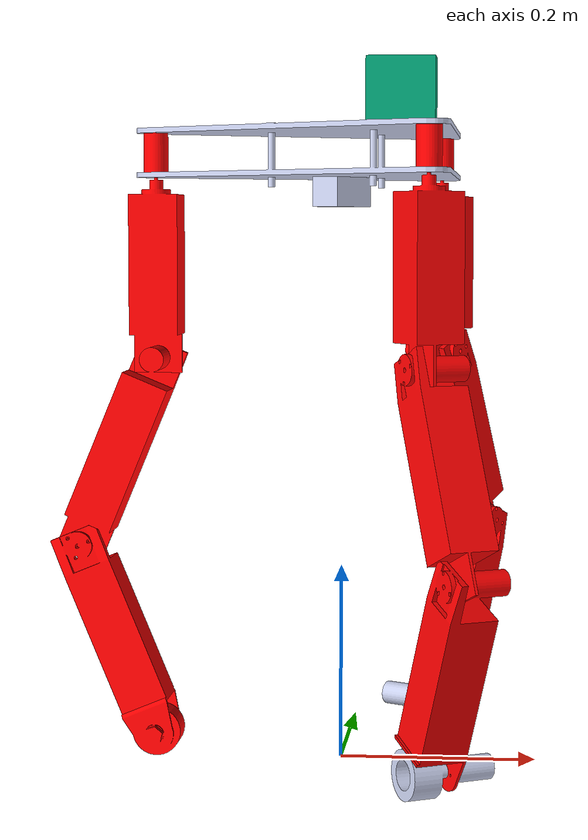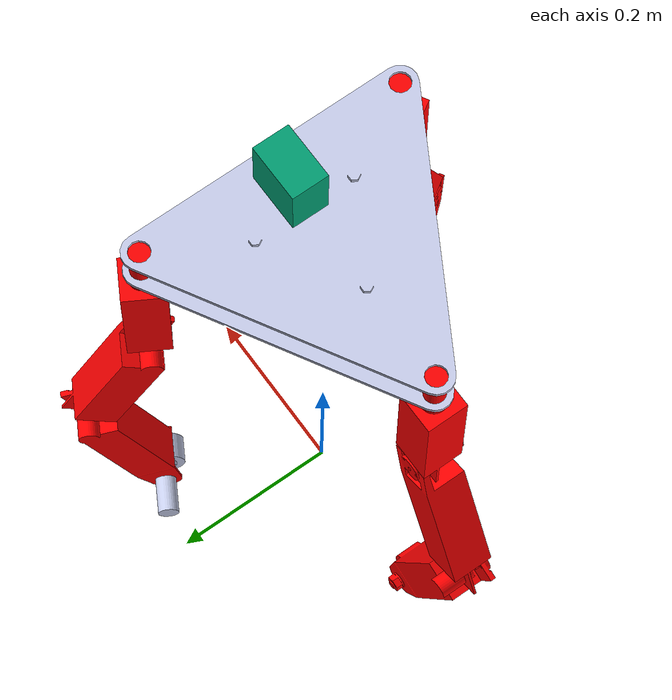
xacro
<?xml version="1.0" encoding="utf-8"?>
<robot xmlns:xacro="http://wiki.ros.org/xacro"
  name="three_legged_robot">

    <xacro:macro name="default_transmission" params="joint_name">
        <transmission name="transmission_${joint_name}">
            <plugin>transmission_interface/SimpleTransmission</plugin>
            <actuator name="actuator_${joint_name}" role="actuator_${joint_name}"/>
            <joint name="${joint_name}" role="${joint_name}">
                <mechanical_reduction>1.0</mechanical_reduction>
            </joint>
        </transmission>
    </xacro:macro>
  <link
    name="map">
    <inertial>
      <origin
        xyz="4.5102810375397E-17 0 -0.000499999999999945"
        rpy="0 0 0" />
      <mass
        value="6.1261056745001E-06" />
      <inertia
        ixx="8.93390410864599E-13"
        ixy="-1.66202821367583E-58"
        ixz="2.95962595510492E-45"
        iyy="8.93390410864599E-13"
        iyz="4.70349326783696E-42"
        izz="7.65763209312513E-13" />
    </inertial>
    <visual>
      <origin
        xyz="0 0 0"
        rpy="0 0 0" />
      <geometry>
        <mesh
          filename="/home/semakiller/diplom/three_legged_robot_ws/src/three_legged_robot/meshes/world.STL" />
      </geometry>
      <material
        name="">
        <color
          rgba="0.792156862745098 0.819607843137255 0.933333333333333 1" />
      </material>
    </visual>
    <collision>
      <origin
        xyz="0 0 0"
        rpy="0 0 0" />
      <geometry>
        <mesh
          filename="/home/semakiller/diplom/three_legged_robot_ws/src/three_legged_robot/meshes/world.STL" />
      </geometry>
    </collision>
  </link>

    <link name="x_link">
      <inertial>
        <origin xyz="0 0 0" rpy="0 0 0"/>
        <mass value="1E-8" />
                <inertia         ixx="8.93390410864599E-13"
        ixy="-1.66202821367583E-58"
        ixz="2.95962595510492E-45"
        iyy="8.93390410864599E-13"
        iyz="4.70349326783696E-42"
        izz="7.65763209312513E-13" />
      </inertial>
      <collision>
      <origin
        xyz="0 0 0"
        rpy="0 0 0" />
      <geometry>
        <mesh
          filename="/home/semakiller/diplom/three_legged_robot_ws/src/three_legged_robot/meshes/world.STL" />
      </geometry>
    </collision>
    </link>

        <link name="y_link">
      <inertial>
        <origin xyz="0 0 0" rpy="0 0 0"/>
        <mass value="1E-8" />
                <inertia         ixx="8.93390410864599E-13"
        ixy="-1.66202821367583E-58"
        ixz="2.95962595510492E-45"
        iyy="8.93390410864599E-13"
        iyz="4.70349326783696E-42"
        izz="7.65763209312513E-13" />
      </inertial>
      <collision>
      <origin
        xyz="0 0 0"
        rpy="0 0 0" />
      <geometry>
        <mesh
          filename="/home/semakiller/diplom/three_legged_robot_ws/src/three_legged_robot/meshes/world.STL" />
      </geometry>
    </collision>
    </link>

    <link name="z_link">
      <inertial>
        <origin xyz="0 0 0" rpy="0 0 0"/>
        <mass value="1E-8" />
                <inertia
                ixx="8.93390410864599E-13"
        ixy="-1.66202821367583E-58"
        ixz="2.95962595510492E-45"
        iyy="8.93390410864599E-13"
        iyz="4.70349326783696E-42"
        izz="7.65763209312513E-13" />
      </inertial>
      <collision>
      <origin
        xyz="0 0 0"
        rpy="0 0 0" />
      <geometry>
        <mesh
          filename="/home/semakiller/diplom/three_legged_robot_ws/src/three_legged_robot/meshes/world.STL" />
      </geometry>
    </collision>
    </link>

    <link name="yaw_link">
      <inertial>
        <origin xyz="0 0 0" rpy="0 0 0"/>
        <mass value="1E-8" />
                <inertia         ixx="8.93390410864599E-13"
        ixy="-1.66202821367583E-58"
        ixz="2.95962595510492E-45"
        iyy="8.93390410864599E-13"
        iyz="4.70349326783696E-42"
        izz="7.65763209312513E-13"  />
      </inertial>
          <collision>
      <origin
        xyz="0 0 0"
        rpy="0 0 0" />
      <geometry>
        <mesh
          filename="/home/semakiller/diplom/three_legged_robot_ws/src/three_legged_robot/meshes/world.STL" />
      </geometry>
    </collision>
    </link>

    <link name="pitch_link">
      <inertial>
        <origin xyz="0 0 0" rpy="0 0 0"/>
        <mass value="1E-8" />
                <inertia         ixx="8.93390410864599E-13"
        ixy="-1.66202821367583E-58"
        ixz="2.95962595510492E-45"
        iyy="8.93390410864599E-13"
        iyz="4.70349326783696E-42"
        izz="7.65763209312513E-13"  />
      </inertial>
      <collision>
      <origin
        xyz="0 0 0"
        rpy="0 0 0" />
      <geometry>
        <mesh
          filename="/home/semakiller/diplom/three_legged_robot_ws/src/three_legged_robot/meshes/world.STL" />
      </geometry>
    </collision>
    </link>

  <link
    name="base">
    <inertial>
      <origin
        xyz="0 0 0"
        rpy="0 0 0" />
      <mass
        value="2.54" />
      <inertia
        ixx="0.01"
        ixy="0"
        ixz="0"
        iyy="0.01"
        iyz="0"
        izz="0.02" />
    </inertial>
    <visual>
      <origin
        xyz="0 0 0"
        rpy="0 0 1.0472" />
      <geometry>
        <mesh
          filename="/home/semakiller/diplom/three_legged_robot_ws/src/three_legged_robot/meshes/base.STL" />
      </geometry>
      <material
        name="">
        <color
          rgba="0.79216 0.81961 0.93333 1" />
      </material>
    </visual>
    <collision>
      <origin
        xyz="0 0 0"
        rpy="0 0 0" />
      <geometry>
        <mesh
          filename="/home/semakiller/diplom/three_legged_robot_ws/src/three_legged_robot/meshes/base.STL" />
      </geometry>
    </collision>
  </link>

    <joint name="x" type="prismatic">
      <origin xyz="0 0 0" rpy="0 0 0"/>
      <axis xyz="1 0 0"/>
      <limit lower="-1000" upper="1000" effort="1000" velocity="1000" />
      <parent link="map" />
      <child link="x_link" />
    </joint>
    <joint name="y" type="prismatic">
      <origin xyz="0 0 0" rpy="0 0 0"/>
      <axis xyz="0 1 0"/>
      <limit lower="-1000" upper="1000" effort="1000" velocity="1000" />
      <parent link="x_link" />
      <child link="y_link" />
    </joint>
    <joint name="z" type="prismatic">
      <origin xyz="0 0 0" rpy="0 0 0"/>
      <axis xyz="0 0 1"/>
      <limit lower="-1000" upper="1000" effort="1000" velocity="1000" />
      <parent link="y_link" />
      <child link="z_link" />
    </joint>
    <joint name="yaw" type="continuous">
      <origin xyz="0 0 0" rpy="0 0 0"/>
      <axis xyz="0 0 1"/>
      <parent link="z_link" />
      <child link="yaw_link" />
    </joint>
    <joint name="pitch" type="continuous">
      <origin xyz="0 0 0" rpy="0 0 0"/>
      <axis xyz="0 1 0"/>
      <parent link="yaw_link" />
      <child link="pitch_link" />
    </joint>
    <joint name="roll" type="continuous">
      <origin xyz="0 0 0.62353" rpy="0 0 0"/>
      <axis xyz="1 0 0"/>
      <parent link="pitch_link" />
      <child link="base" />
    </joint>

  <link
    name="leg1_upper_link">
    <inertial>
      <origin
        xyz="0 0 -0.105"
        rpy="0 0 0" />
      <mass
        value="0.63" />
      <inertia
        ixx="0.0011498"
        ixy="0"
        ixz="0"
        iyy="0.0011498"
        iyz="0"
        izz="0.00023794" />
    </inertial>
    <visual>
      <origin
        xyz="0 0 0"
        rpy="0 0 0" />
      <geometry>
        <mesh
          filename="/home/semakiller/diplom/three_legged_robot_ws/src/three_legged_robot/meshes/leg1_upper_link.STL" />
      </geometry>
      <material
        name="">
        <color
          rgba="1 0 0 1" />
      </material>
    </visual>
    <collision>
      <origin
        xyz="0 0 0"
        rpy="0 0 0" />
      <geometry>
        <mesh
          filename="/home/semakiller/diplom/three_legged_robot_ws/src/three_legged_robot/meshes/leg1_upper_link.STL" />
      </geometry>
    </collision>
  </link>

   <joint
    name="q1"
    type="continuous">
    <origin
      xyz="0.09547 0.16536 0"
      rpy="0 0 1.0472" />
    <parent
      link="base" />
    <child
      link="leg1_upper_link" />
    <axis
      xyz="0 0 1" />
  </joint>

  <link
    name="leg2_upper_link">
    <inertial>
      <origin
        xyz="0 0 -0.105"
        rpy="0 0 0" />
      <mass
        value="0.63" />
      <inertia
        ixx="0.0011498"
        ixy="0"
        ixz="0"
        iyy="0.0011498"
        iyz="0"
        izz="0.00023794" />
    </inertial>
    <visual>
      <origin
        xyz="0 0 0"
        rpy="0 0 0" />
      <geometry>
        <mesh
          filename="/home/semakiller/diplom/three_legged_robot_ws/src/three_legged_robot/meshes/leg1_upper_link.STL" />
      </geometry>
      <material
        name="">
        <color
          rgba="1 0 0 1" />
      </material>
    </visual>
    <collision>
      <origin
        xyz="0 0 0"
        rpy="0 0 0" />
      <geometry>
        <mesh
          filename="/home/semakiller/diplom/three_legged_robot_ws/src/three_legged_robot/meshes/leg1_upper_link.STL" />
      </geometry>
    </collision>
  </link>

  <joint
    name="q2"
    type="continuous">
    <origin
      xyz="-0.19094 0 0"
      rpy="0 0 3.1415" />
    <parent
      link="base" />
    <child
      link="leg2_upper_link" />
    <axis
      xyz="0 0 1" />
  </joint>

    <link
    name="leg3_upper_link">
    <inertial>
      <origin
        xyz="0 0 -0.105"
        rpy="0 0 0" />
      <mass
        value="0.63" />
      <inertia
        ixx="0.0011498"
        ixy="0"
        ixz="0"
        iyy="0.0011498"
        iyz="0"
        izz="0.00023794" />
    </inertial>
    <visual>
      <origin
        xyz="0 0 0"
        rpy="0 0 0" />
      <geometry>
        <mesh
          filename="/home/semakiller/diplom/three_legged_robot_ws/src/three_legged_robot/meshes/leg1_upper_link.STL" />
      </geometry>
      <material
        name="">
        <color
          rgba="1 0 0 1" />
      </material>
    </visual>
    <collision>
      <origin
        xyz="0 0 0"
        rpy="0 0 0" />
      <geometry>
        <mesh
          filename="/home/semakiller/diplom/three_legged_robot_ws/src/three_legged_robot/meshes/leg1_upper_link.STL" />
      </geometry>
    </collision>
  </link>
  <joint
    name="q3"
    type="continuous">
    <origin
      xyz="0.09547 -0.16536 0"
      rpy="0 0 -1.0472" />
    <parent
      link="base" />
    <child
      link="leg3_upper_link" />
    <axis
      xyz="0 0 1" />
  </joint>

  <link
    name="leg1_medium_link">
    <inertial>
      <origin
        xyz="0.037361 -0.090306 0"
        rpy="0 0 0" />
      <mass
        value="0.71" />
      <inertia
        ixx="0.04"
        ixy="0"
        ixz="0"
        iyy="0.04"
        iyz="0"
        izz="0.00435" />
    </inertial>
    <visual>
      <origin
        xyz="0 0 0"
        rpy="0 0 0" />
      <geometry>
        <mesh
          filename="/home/semakiller/diplom/three_legged_robot_ws/src/three_legged_robot/meshes/leg1_medium_link.STL" />
      </geometry>
      <material
        name="">
        <color
          rgba="1 0 0 1" />
      </material>
    </visual>
    <collision>
      <origin
        xyz="0 0 0"
        rpy="0 0 0" />
      <geometry>
        <mesh
          filename="/home/semakiller/diplom/three_legged_robot_ws/src/three_legged_robot/meshes/leg1_medium_link.STL" />
      </geometry>
    </collision>
  </link>
  <joint
    name="q4"
    type="continuous">
    <origin
      xyz="0 0 -0.21"
      rpy="1.5708 0 0" />
    <parent
      link="leg1_upper_link" />
    <child
      link="leg1_medium_link" />
    <axis
      xyz="0 0 1" />
  </joint>

    <link
    name="leg2_medium_link">
    <inertial>
      <origin
        xyz="0.037361 -0.090306 0"
        rpy="0 0 0" />
      <mass
        value="0.71" />
      <inertia
        ixx="0.04"
        ixy="0"
        ixz="0"
        iyy="0.04"
        iyz="0"
        izz="0.00435" />
    </inertial>
    <visual>
      <origin
        xyz="0 0 0"
        rpy="0 0 0" />
      <geometry>
        <mesh
          filename="/home/semakiller/diplom/three_legged_robot_ws/src/three_legged_robot/meshes/leg1_medium_link.STL" />
      </geometry>
      <material
        name="">
        <color
          rgba="1 0 0 1" />
      </material>
    </visual>
    <collision>
      <origin
        xyz="0 0 0"
        rpy="0 0 0" />
      <geometry>
        <mesh
          filename="/home/semakiller/diplom/three_legged_robot_ws/src/three_legged_robot/meshes/leg1_medium_link.STL" />
      </geometry>
    </collision>
  </link>
  <joint
    name="q5"
    type="continuous">
    <origin
      xyz="0 0 -0.21"
      rpy="1.5708 0 0" />
    <parent
      link="leg2_upper_link" />
    <child
      link="leg2_medium_link" />
    <axis
      xyz="0 0 -1" />
  </joint>

    <link
    name="leg3_medium_link">
    <inertial>
      <origin
        xyz="0.037361 -0.090306 0"
        rpy="0 0 0" />
      <mass
        value="0.71" />
      <inertia
        ixx="0.04"
        ixy="0"
        ixz="0"
        iyy="0.04"
        iyz="0"
        izz="0.00435" />
    </inertial>
    <visual>
      <origin
        xyz="0 0 0"
        rpy="0 0 0" />
      <geometry>
        <mesh
          filename="/home/semakiller/diplom/three_legged_robot_ws/src/three_legged_robot/meshes/leg1_medium_link.STL" />
      </geometry>
      <material
        name="">
        <color
          rgba="1 0 0 1" />
      </material>
    </visual>
    <collision>
      <origin
        xyz="0 0 0"
        rpy="0 0 0" />
      <geometry>
        <mesh
          filename="/home/semakiller/diplom/three_legged_robot_ws/src/three_legged_robot/meshes/leg1_medium_link.STL" />
      </geometry>
    </collision>
  </link>
  <joint
    name="q6"
    type="continuous">
    <origin
      xyz="0 0 -0.21"
      rpy="1.5708 0 0" />
    <parent
      link="leg3_upper_link" />
    <child
      link="leg3_medium_link" />
    <axis
      xyz="0 0 1" />
  </joint>

    <link
    name="leg1_bottom_link">
    <inertial>
      <origin
        xyz="0.068158 -0.068158 0"
        rpy="0 0 0" />
      <mass
        value="0.72" />
      <inertia
        ixx="0.0008995"
        ixy="0"
        ixz="0"
        iyy="0.0008995"
        iyz="0"
        izz="0.000151" />
    </inertial>
    <visual>
      <origin
        xyz="0 0 0"
        rpy="0 0 0" />
      <geometry>
        <mesh
          filename="/home/semakiller/diplom/three_legged_robot_ws/src/three_legged_robot/meshes/leg1_bottom_link.STL" />
      </geometry>
      <material
        name="">
        <color
          rgba="1 0 0 1" />
      </material>
    </visual>
    <collision>
      <origin
        xyz="0 0 0"
        rpy="0 0 0" />
      <geometry>
        <mesh
          filename="/home/semakiller/diplom/three_legged_robot_ws/src/three_legged_robot/meshes/leg1_bottom_link.STL" />
      </geometry>
    </collision>
  </link>
  <joint
    name="q7"
    type="continuous">
    <origin
      xyz="0.08052 -0.19409 0"
      rpy="0 0 -1.178" />
    <parent
      link="leg1_medium_link" />
    <child
      link="leg1_bottom_link" />
    <axis
      xyz="0 0 1" />
  </joint>

  <link
    name="leg2_bottom_link">
    <inertial>
      <origin
        xyz="0.078824 -0.078487 -0.00028114"
        rpy="0 0 0" />
      <mass
        value="0.9" />
      <inertia
        ixx="0.0046814"
        ixy="0"
        ixz="0"
        iyy="0.0046814"
        iyz="0"
        izz="0.0077262" />
    </inertial>
    <visual>
      <origin
        xyz="0 0 0"
        rpy="0 0 0" />
      <geometry>
        <mesh
          filename="/home/semakiller/diplom/three_legged_robot_ws/src/three_legged_robot/meshes/leg2_bottom_link.STL" />
      </geometry>
      <material
        name="">
        <color
          rgba="1 0 0 1" />
      </material>
    </visual>
    <collision>
      <origin
        xyz="0 0 0"
        rpy="0 0 0" />
      <geometry>
        <mesh
          filename="/home/semakiller/diplom/three_legged_robot_ws/src/three_legged_robot/meshes/leg2_bottom_link.STL" />
      </geometry>
    </collision>
  </link>
  <joint
    name="q8"
    type="continuous">
    <origin
      xyz="0.08052 -0.19409 0"
      rpy="0 0 -1.178" />
    <parent
      link="leg2_medium_link" />
    <child
      link="leg2_bottom_link" />
    <axis
      xyz="0 0 -1" />
  </joint>

  <link
    name="leg3_bottom_link">
    <inertial>
      <origin
        xyz="0.068158 -0.068158 0"
        rpy="0 0 0" />
      <mass
        value="0.72" />
      <inertia
        ixx="0.0008995"
        ixy="0"
        ixz="0"
        iyy="0.0008995"
        iyz="0"
        izz="0.000151" />
    </inertial>
    <visual>
      <origin
        xyz="0 0 0"
        rpy="0 0 0" />
      <geometry>
        <mesh
          filename="/home/semakiller/diplom/three_legged_robot_ws/src/three_legged_robot/meshes/leg1_bottom_link.STL" />
      </geometry>
      <material
        name="">
        <color
          rgba="1 0 0 1" />
      </material>
    </visual>
    <collision>
      <origin
        xyz="0 0 0"
        rpy="0 0 0" />
      <geometry>
        <mesh
          filename="/home/semakiller/diplom/three_legged_robot_ws/src/three_legged_robot/meshes/leg1_bottom_link.STL" />
      </geometry>
    </collision>
  </link>
  <joint
    name="q9"
    type="continuous">
    <origin
      xyz="0.08052 -0.19409 0"
      rpy="0 0 -1.178" />
    <parent
      link="leg3_medium_link" />
    <child
      link="leg3_bottom_link" />
    <axis
      xyz="0 0 1" />
  </joint>

  <link
    name="leg1_wheel_link">
    <inertial>
      <origin
        xyz="0 0 -0.0098602"
        rpy="0 0 0" />
      <mass
        value="0.25" />
      <inertia
        ixx="6E-05"
        ixy="0"
        ixz="0"
        iyy="6E-05"
        iyz="0"
        izz="7E-05" />
    </inertial>
    <visual>
      <origin
        xyz="0 0 0"
        rpy="0 0 0" />
      <geometry>
        <mesh
          filename="/home/semakiller/diplom/three_legged_robot_ws/src/three_legged_robot/meshes/wheel.STL" />
      </geometry>
      <material
        name="">
        <color
          rgba="0.79216 0.81961 0.93333 1" />
      </material>
    </visual>
    <collision>
      <origin
        xyz="0 0 0"
        rpy="0 0 0" />
      <geometry>
        <mesh
          filename="/home/semakiller/diplom/three_legged_robot_ws/src/three_legged_robot/meshes/wheel.STL" />
      </geometry>
    </collision>
  </link>
  <joint
    name="q10"
    type="fixed">
    <origin
      xyz="0.14849 -0.14849 0"
      rpy="0 0 -0.78545" />
    <parent
      link="leg1_bottom_link" />
    <child
      link="leg1_wheel_link" />
    <axis
      xyz="0 0 -1" />
  </joint>

  <link
    name="wheel">
    <inertial>
      <origin
        xyz="0 0 -0.0098602"
        rpy="0 0 0" />
      <mass
        value="0.25" />
      <inertia
        ixx="6E-05"
        ixy="0"
        ixz="0"
        iyy="6E-05"
        iyz="0"
        izz="7E-05" />
    </inertial>
    <visual>
      <origin
        xyz="0 0 0"
        rpy="0 0 0" />
      <geometry>
        <mesh
          filename="/home/semakiller/diplom/three_legged_robot_ws/src/three_legged_robot/meshes/wheel.STL" />
      </geometry>
      <material
        name="">
        <color
          rgba="0.79216 0.81961 0.93333 1" />
      </material>
    </visual>
    <collision>
      <origin
        xyz="0 0 0"
        rpy="0 0 0" />
      <geometry>
        <mesh
          filename="/home/semakiller/diplom/three_legged_robot_ws/src/three_legged_robot/meshes/wheel.STL" />
      </geometry>
    </collision>
  </link>
  <joint
    name="q11"
    type="fixed">
    <!-- we don't need to move a wheels in legged movement(tested it - just singular configurations) -->
    <origin
      xyz="0.14849 -0.14849 0"
      rpy="0 0 -0.78545" />
    <parent
      link="leg3_bottom_link" />
    <child
      link="wheel" />
    <axis
      xyz="0 0 1" />
  </joint>

  <joint name="laser_joint" type="fixed">
    <parent link = "base"/>
    <child link = "laser"/>
    <origin xyz = "0.06047 0 0.06"/>
  </joint>

  <link name="laser">
    <visual>
      <geometry>
        <box size="0.07 0.045 0.072">
        </box>
      </geometry>
      <collision>
        <geometry>
          <box size="0.07 0.045 0.072">
          </box>
        </geometry>
      </collision>
      <inertial>
        <origin
          xyz="0 0 -0.0098602"
          rpy="0 0 0" />
        <mass
          value="0.01" />
        <inertia
          ixx="6E-13"
          ixy="0"
          ixz="0"
          iyy="6E-13"
          iyz="0"
          izz="7E-13" />
      </inertial>
    </visual>
  </link>
  <xacro:default_transmission joint_name="q1"/>
  <xacro:default_transmission joint_name="q2"/>
  <xacro:default_transmission joint_name="q3"/>
  <xacro:default_transmission joint_name="q4"/>
  <xacro:default_transmission joint_name="q5"/>
  <xacro:default_transmission joint_name="q6"/>
  <xacro:default_transmission joint_name="q7"/>
  <xacro:default_transmission joint_name="q8"/>
  <xacro:default_transmission joint_name="q9"/>
  <xacro:default_transmission joint_name="q10"/>
  <xacro:default_transmission joint_name="q11"/>

      <ros2_control name="GazeboSimSystem" type="system">
        <hardware>
            <plugin>gz_ros2_control/GazeboSimSystem</plugin>
        </hardware>

        <joint name="q1">
            <command_interface name="position">
                <param name="min">-3.14</param>
                <param name="max">3.14</param>
            </command_interface>
            <state_interface name="position"/>
            <hardwareInterface>position</hardwareInterface>
        </joint>

        <joint name="q2">
            <command_interface name="position">
                <param name="min">-3.14</param>
                <param name="max">3.14</param>
            </command_interface>
            <state_interface name="position"/>
            <hardwareInterface>position</hardwareInterface>
        </joint>

        <joint name="q3">
            <command_interface name="position">
                <param name="min">-3.14</param>
                <param name="max">3.14</param>
            </command_interface>
            <state_interface name="position"/>
            <hardwareInterface>position</hardwareInterface>
        </joint>

        <joint name="q4">
            <command_interface name="position">
                <param name="min">-3.14</param>
                <param name="max">3.14</param>
            </command_interface>
            <state_interface name="position"/>
            <hardwareInterface>position</hardwareInterface>
        </joint>

        <joint name="q5">
            <command_interface name="position">
                <param name="min">-3.14</param>
                <param name="max">3.14</param>
            </command_interface>
            <state_interface name="position"/>
            <hardwareInterface>position</hardwareInterface>
        </joint>

        <joint name="q6">
            <command_interface name="position">
                <param name="min">-3.14</param>
                <param name="max">3.14</param>
            </command_interface>
            <state_interface name="position"/>
            <hardwareInterface>position</hardwareInterface>
        </joint>

        <joint name="q7">
            <command_interface name="position">
                <param name="min">-3.14</param>
                <param name="max">3.14</param>
            </command_interface>
            <state_interface name="position"/>
            <hardwareInterface name="position"/>
        </joint>

        <joint name="q8">
            <command_interface name="position">
                <param name="min">-3.14</param>
                <param name="max">3.14</param>
            </command_interface>
            <state_interface name="position"/>
            <hardware_interface name="position"/>
        </joint>

        <joint name="q9">
            <command_interface name="position">
                <param name="min">-3.14</param>
                <param name="max">3.14</param>
            </command_interface>
            <state_interface name="position"/>
            <hardware_interface name="position"/>
        </joint>
    </ros2_control>
    <gazebo>
        <plugin filename="gz_ros2_control-system" name="gz_ros2_control::GazeboSimROS2ControlPlugin">
            <parameters>/home/semakiller/diplom/three_legged_robot_ws/src/three_legged_robot/config/controller.yaml</parameters>
            <ros>
                <remapping>/controller_manager/robot_description:=/robot_description</remapping>
            </ros>
        </plugin>
        <self_collide>false</self_collide>
    </gazebo>
</robot>
